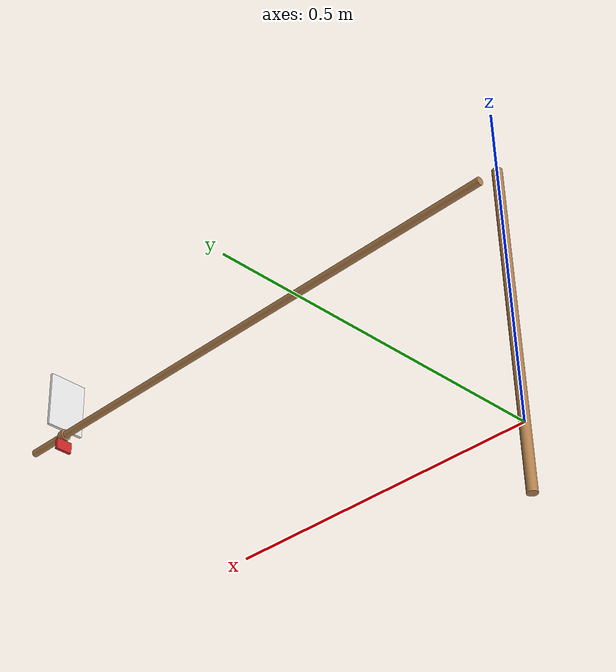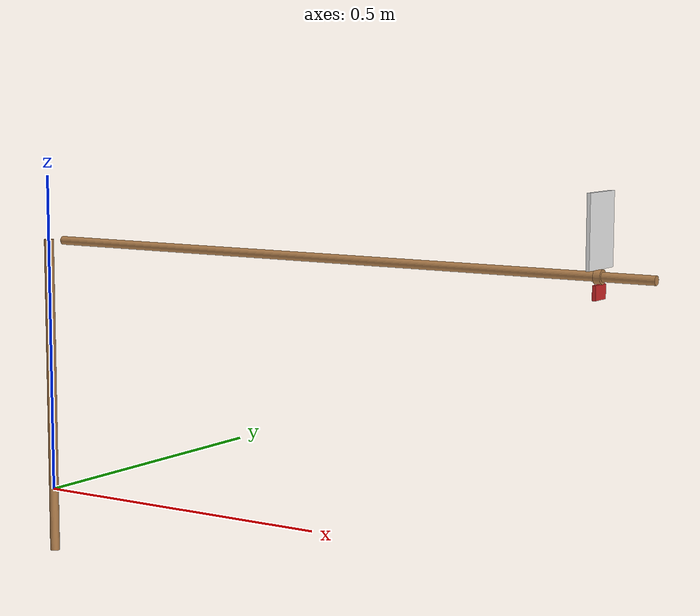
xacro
<?xml version="1.0"?>
<robot name="stick"
       xmlns:xacro="http://ros.org/wiki/xacro"
       xmlns:sensor="http://playerstage.sourceforge.net/gazebo/xmlschema/#sensor"
       xmlns:controller="http://playerstage.sourceforge.net/gazebo/xmlschema/#controller"
       xmlns:interface="http://playerstage.sourceforge.net/gazebo/xmlschema/#interface">

  <xacro:property name="lever_length" value="0.5"/>
  <xacro:property name="lever_radius" value="0.0075"/>
  <xacro:property name="lever_mass" value="0.1"/>
  <xacro:property name="lever_ixx" value="0.1"/>
  <xacro:property name="lever_iyy" value="0.1"/>
  <xacro:property name="lever_izz" value="0.01"/>
  <xacro:property name="lever_offset_z" value="0.00"/>

  <link name="lever_stick">
    <inertial>
      <mass value="${lever_mass}" />
      <origin xyz="0 0 0.15" rpy="0 0 0" />
      <inertia  ixx="${lever_ixx}" ixy="0.0"  ixz="0.0"  iyy="${lever_iyy}"  iyz="0.0"  izz="${lever_izz}" />
    </inertial>
    <visual>
      <origin xyz="0 0 0.15" rpy="0 0 0" />
      <geometry>
        <cylinder length="${lever_length}" radius="${lever_radius}"/>
      </geometry>
    </visual>
    <collision>
      <origin xyz="0 0 0.15" rpy="0 0 0" />
      <geometry>
        <cylinder length="${lever_length}" radius="${lever_radius}"/>
      </geometry>
    </collision>
  </link>
  <gazebo reference="lever_stick">
    <material>Gazebo/Wood</material>
    <turnGravityOff>true</turnGravityOff>
  </gazebo>

  <xacro:property name="cue_length" value="1.0"/>
  <xacro:property name="cue_radius" value="0.0065"/>
  <xacro:property name="cue_mass" value="0.01"/>
  <xacro:property name="cue_ixx" value="0.01"/>
  <xacro:property name="cue_iyy" value="0.01"/>
  <xacro:property name="cue_izz" value="0.001"/>
  <xacro:property name="cue_offset_z" value="0.03"/>

  <joint name="cue_ball_joint" type="revolute" >
    <parent link="lever_stick" />
    <child link="cue_stick" />
    <origin xyz="0 0 ${lever_length-0.1}" rpy="0 1.57 0" />
    <axis xyz="0 1 0"/>
    <limit lower="-0.5" upper="0.5" effort="10000" velocity="1.0"/>
    <calibration reference_position="0.0"/>
  </joint>
  <link name="cue_stick">
    <inertial>
      <mass value="${cue_mass}" />
      <origin xyz="0 0 ${cue_length/2+cue_offset_z}" rpy="0 0 0" />
      <inertia  ixx="${cue_ixx}" ixy="0.0"  ixz="0.0"  iyy="${cue_iyy}"  iyz="0.0"  izz="${cue_izz}" />
    </inertial>
    <visual>
      <origin xyz="0 0 ${cue_offset_z+cue_length/2}" rpy="0 0 0" />
      <geometry>
        <cylinder length="${cue_length}" radius="${cue_radius}"/>
      </geometry>
    </visual>
    <collision>
      <origin xyz="0 0 ${cue_offset_z+cue_length/2}" rpy="0 0 0" />
      <geometry>
        <cylinder length="${cue_length}" radius="${cue_radius}"/>
      </geometry>
    </collision>
  </link>
  <gazebo reference="cue_stick">
    <material>Gazebo/Wood</material>
    <turnGravityOff>true</turnGravityOff>
  </gazebo>

  <xacro:property name="bridge_mass" value="0.1"/>
  <xacro:property name="bridge_ixx" value="0.1"/>
  <xacro:property name="bridge_iyy" value="0.1"/>
  <xacro:property name="bridge_izz" value="0.1"/>

  <joint name="cue_bridge_joint" type="prismatic" >
    <parent link="cue_stick" />
    <child link="link_virtual1" />
    <origin xyz="0 0 ${cue_length-0.05}" rpy="0 0 0" />
    <axis xyz="0 0 1"/>
    <limit lower="-0.1" upper="0.1" effort="10000" velocity="1.0"/>
    <calibration reference_position="0.0"/>
  </joint>

  <link name="link_virtual1">
   <inertial>
      <mass value="${cue_mass/1000}" />
      <origin xyz="0 0 0" rpy="0 0 0" />
      <inertia  ixx="0" ixy="0.0"  ixz="0.01"  iyy="0.01"  iyz="0.0"  izz="0.01" />
    </inertial>
    <visual>
      <origin xyz="0.0 0 0" rpy="0 0 0" />
      <geometry>
        <cylinder length="0.01" radius="0.01"/>
      </geometry>
    </visual>
    <collision>
      <origin xyz="0.01 0 0" rpy="0 0 0" />
      <geometry>
        <cylinder length="0.01" radius="0.01"/>
      </geometry>
    </collision>
  </link>
  <gazebo reference="link_virtual1">
    <material>Gazebo/Wood</material>
    <turnGravityOff>true</turnGravityOff>
  </gazebo>
  <!-- This joint allows pitching of the bridge-->
  <joint name="virtual_rev_joint_1" type="revolute" >
    <parent link="link_virtual1" />
    <child link="link_virtual2" />
    <origin xyz="0 0 0" rpy="0 0 0" />
    <axis xyz="0 1 0"/>
    <limit lower="-0.5" upper="0.5" effort="10000" velocity="2.0"/>
    <calibration reference_position="0.0"/>
  </joint>

  <link name="link_virtual2">
<inertial>
      <mass value="${cue_mass/1000}" />
      <origin xyz="0 0 0" rpy="0 0 0" />
      <inertia  ixx="0" ixy="0.0"  ixz="0.01"  iyy="0.01"  iyz="0.0"  izz="0.01" />
    </inertial>
    <visual>
      <origin xyz="0.0 0 0" rpy="0 0 0" />
      <geometry>
        <cylinder length="0.01" radius="0.01"/>
      </geometry>
    </visual>
    <collision>
      <origin xyz="0.01 0 0" rpy="0 0 0" />
      <geometry>
        <cylinder length="0.01" radius="0.01"/>
      </geometry>
    </collision>
  </link>
  <gazebo reference="link_virtual2">
    <material>Gazebo/Wood</material>
    <turnGravityOff>true</turnGravityOff>
  </gazebo>
  <!-- This joint allows yawing of the bridge-->
  <joint name="virtual_rev_joint_2" type="revolute" >
    <parent link="link_virtual2" />
    <child link="bridge" />
    <origin xyz="0 0 0" rpy="0 0 0" />
    <axis xyz="1 0 0"/>
    <limit lower="-0.5" upper="0.5" effort="10000" velocity="2.0"/>
    <calibration reference_position="0.0"/>
  </joint>

  <link name="bridge">
    <inertial>
      <mass value="${bridge_mass}" />
      <origin xyz="0 0 0" rpy="0 0 0" />
      <inertia  ixx="${bridge_ixx}" ixy="0.0"  ixz="0.0"  iyy="${bridge_iyy}"  iyz="0.0"  izz="${bridge_izz}" />
    </inertial>
    <visual>
      <origin xyz="-0.06 0 0" rpy="0 0 0" />
      <geometry>
        <box size="0.10 0.07 0.005"/>
      </geometry>
    </visual>
    <collision>
      <origin xyz="-0.06 0 0" rpy="0 0 0" />
      <geometry>
        <box size="0.10 0.07 0.005"/>
      </geometry>
    </collision>
  </link>
  <gazebo reference="bridge">
    <material>Gazebo/White</material>
    <turnGravityOff>true</turnGravityOff>
    <selfCollide>true</selfCollide>
  </gazebo>

  <joint name="cue_bridge_bottom_joint" type="fixed" >
    <parent link="bridge" />
    <child link="bridge_bottom" />
    <origin xyz="0 0 0" rpy="0 0 0" />
  </joint>
  <link name="bridge_bottom">
    <inertial>
      <mass value="${bridge_mass}" />
      <origin xyz="0 0 0" rpy="0 0 0" />
      <inertia  ixx="${bridge_ixx}" ixy="0.0"  ixz="0.0"  iyy="${bridge_iyy}"  iyz="0.0"  izz="${bridge_izz}" />
    </inertial>
    <visual>
      <origin xyz="0.02 0 0" rpy="0 0 0" />
      <geometry>
        <box size="0.02 0.03 0.005"/>
      </geometry>
    </visual>
    <collision>
      <origin xyz="0.02 0 0" rpy="0 0 0" />
      <geometry>
        <box size="0.02 0.03 0.005"/>
      </geometry>
    </collision>
  </link>
  <gazebo reference="bridge_bottom">
    <material>Gazebo/Red</material>
    <turnGravityOff>true</turnGravityOff>
    <selfCollide>true</selfCollide>
  </gazebo>

<transmission name="lever_cue" type="SimpleTransmission">
<actuator name="lc"/>
<joint name="cue_ball_joint"/>
<mechanicalReduction>1.0</mechanicalReduction>
</transmission>

<transmission name="cue_v1" type="SimpleTransmission">
<actuator name="cb"/>
<joint name="cue_bridge_joint"/>
<mechanicalReduction>1.0</mechanicalReduction>
</transmission>

<transmission name="v1_v2" type="SimpleTransmission">
<actuator name="v12"/>
<joint name="virtual_rev_joint_1"/>
<mechanicalReduction>1.0</mechanicalReduction>
</transmission>

<transmission name="v2_bridge" type="SimpleTransmission">
<actuator name="v2b"/>
<joint name="virtual_rev_joint_2"/>
<mechanicalReduction>1.0</mechanicalReduction>
</transmission>

</robot>
